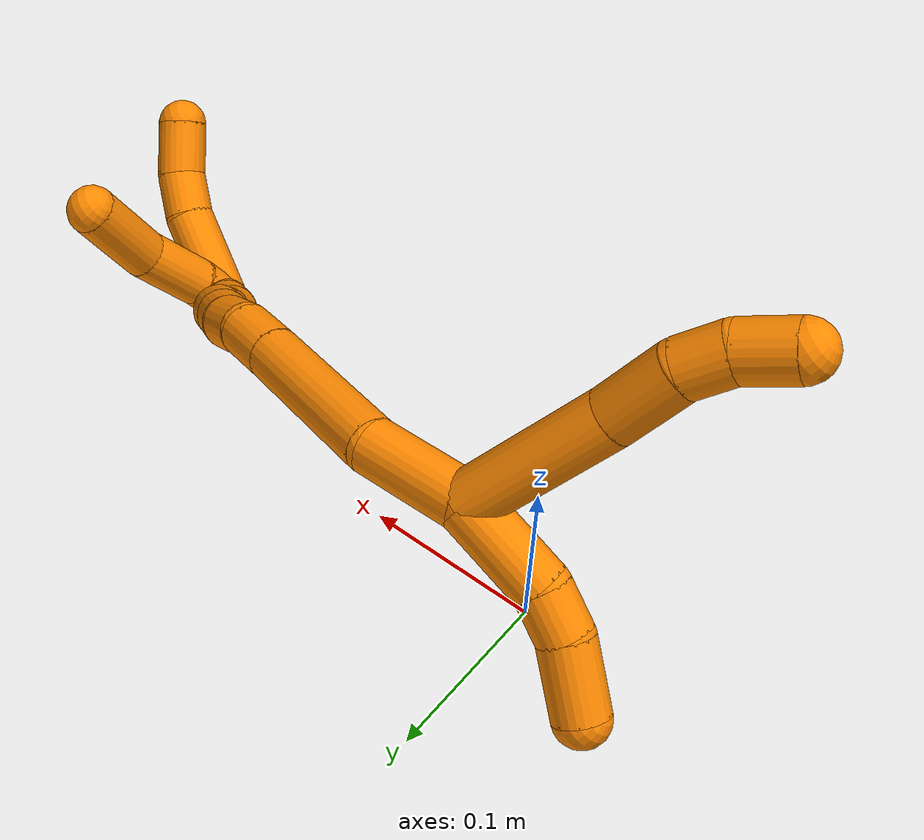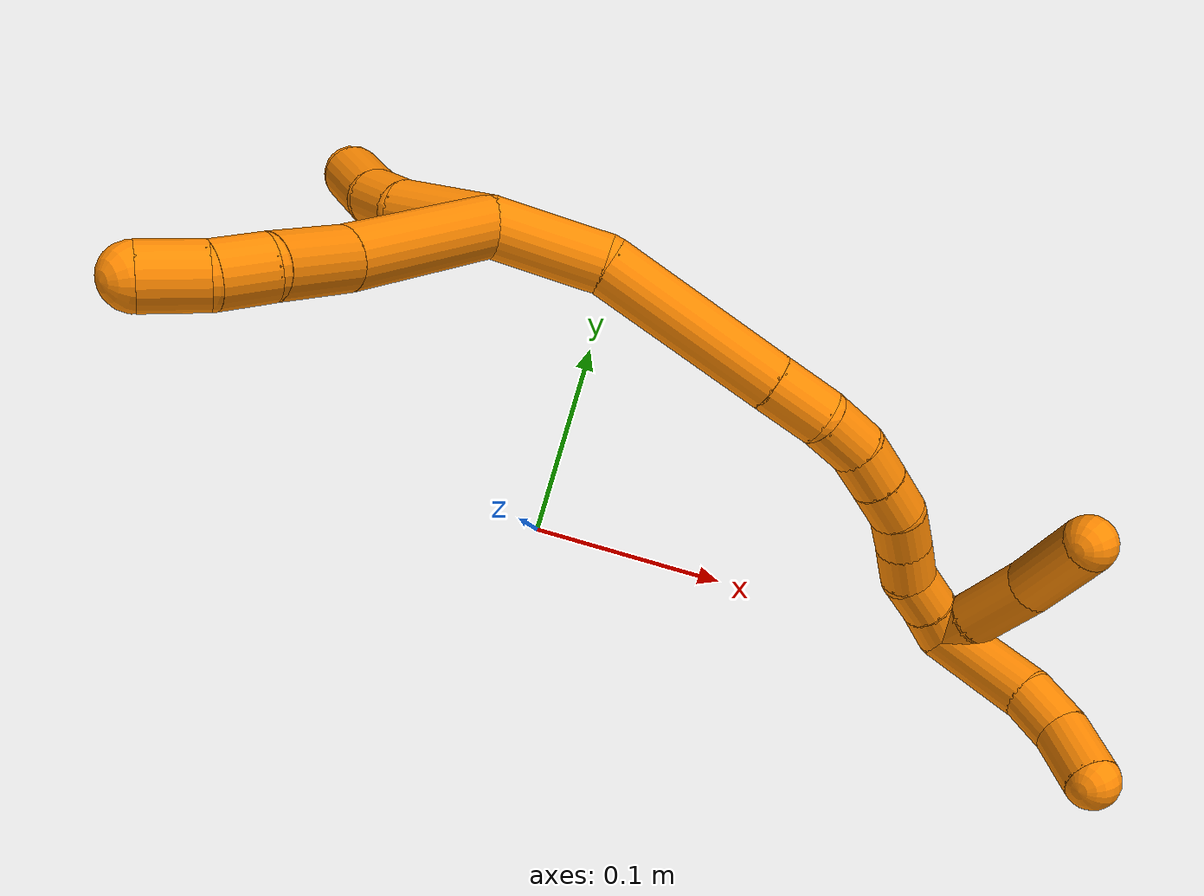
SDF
<sdf version="1.7">
 <world name="default">
  <model name="19">
   <static>0</static>
   <link name="19">
    <collision name="collision-cylinder-e_1_2_8">
     <pose>-0.000259 -0.001773 0.035304 0.050188 -0.007329 -0.000184</pose>
     <geometry><cylinder><radius>0.0125</radius><length>0.070699</length></cylinder></geometry>
     <surface>
      <friction><ode><mu>1.16</mu><mu2>1.16</mu2><slip1>0</slip1><slip2>0</slip2></ode></friction>
      <contact><ode><kp>1e+06</kp><kd>1</kd><max_vel>0</max_vel><min_depth>0.001</min_depth></ode></contact>
     </surface>
    </collision>
    <visual name="visual-cylinder-e_1_2_8">
     <pose>-0.000259 -0.001773 0.035304 0.050188 -0.007329 -0.000184</pose>
     <geometry><cylinder><radius>0.0125</radius><length>0.070699</length></cylinder></geometry>
     <material><ambient>0.996078 0.537255 0 1</ambient></material>
    </visual>
    <collision name="collision-cylinder-e_2_8_9">
     <pose>-0.000133 -0.002143 0.08747 -0.083033 0.022776 -0.000946</pose>
     <geometry><cylinder><radius>0.0125</radius><length>0.033848</length></cylinder></geometry>
     <surface>
      <friction><ode><mu>1.16</mu><mu2>1.16</mu2><slip1>0</slip1><slip2>0</slip2></ode></friction>
      <contact><ode><kp>1e+06</kp><kd>1</kd><max_vel>0</max_vel><min_depth>0.001</min_depth></ode></contact>
     </surface>
    </collision>
    <visual name="visual-cylinder-e_2_8_9">
     <pose>-0.000133 -0.002143 0.08747 -0.083033 0.022776 -0.000946</pose>
     <geometry><cylinder><radius>0.0125</radius><length>0.033848</length></cylinder></geometry>
     <material><ambient>0.996078 0.537255 0 1</ambient></material>
    </visual>
    <collision name="collision-cylinder-e_3_9_10">
     <pose>-0.001891 -0.002015 0.114652 0.122887 -0.203234 -0.012546</pose>
     <geometry><cylinder><radius>0.0125</radius><length>0.021237</length></cylinder></geometry>
     <surface>
      <friction><ode><mu>1.16</mu><mu2>1.16</mu2><slip1>0</slip1><slip2>0</slip2></ode></friction>
      <contact><ode><kp>1e+06</kp><kd>1</kd><max_vel>0</max_vel><min_depth>0.001</min_depth></ode></contact>
     </surface>
    </collision>
    <visual name="visual-cylinder-e_3_9_10">
     <pose>-0.001891 -0.002015 0.114652 0.122887 -0.203234 -0.012546</pose>
     <geometry><cylinder><radius>0.0125</radius><length>0.021237</length></cylinder></geometry>
     <material><ambient>0.996078 0.537255 0 1</ambient></material>
    </visual>
    <collision name="collision-cylinder-e_4_10_6">
     <pose>-0.009818 -0.005265 0.135426 0.186773 -0.498074 -0.047629</pose>
     <geometry><cylinder><radius>0.0125</radius><length>0.024216</length></cylinder></geometry>
     <surface>
      <friction><ode><mu>1.16</mu><mu2>1.16</mu2><slip1>0</slip1><slip2>0</slip2></ode></friction>
      <contact><ode><kp>1e+06</kp><kd>1</kd><max_vel>0</max_vel><min_depth>0.001</min_depth></ode></contact>
     </surface>
    </collision>
    <visual name="visual-cylinder-e_4_10_6">
     <pose>-0.009818 -0.005265 0.135426 0.186773 -0.498074 -0.047629</pose>
     <geometry><cylinder><radius>0.0125</radius><length>0.024216</length></cylinder></geometry>
     <material><ambient>0.996078 0.537255 0 1</ambient></material>
    </visual>
    <collision name="collision-cylinder-e_1_2_11">
     <pose>-0.020479 -0.008217 0.002944 1.22672 -1.1679 -0.870806</pose>
     <geometry><cylinder><radius>0.0125</radius><length>0.044523</length></cylinder></geometry>
     <surface>
      <friction><ode><mu>1.16</mu><mu2>1.16</mu2><slip1>0</slip1><slip2>0</slip2></ode></friction>
      <contact><ode><kp>1e+06</kp><kd>1</kd><max_vel>0</max_vel><min_depth>0.001</min_depth></ode></contact>
     </surface>
    </collision>
    <visual name="visual-cylinder-e_1_2_11">
     <pose>-0.020479 -0.008217 0.002944 1.22672 -1.1679 -0.870806</pose>
     <geometry><cylinder><radius>0.0125</radius><length>0.044523</length></cylinder></geometry>
     <material><ambient>0.996078 0.537255 0 1</ambient></material>
    </visual>
    <collision name="collision-cylinder-e_2_11_12">
     <pose>-0.051105 -0.020002 0.004067 2.04271 -1.19478 -1.67588</pose>
     <geometry><cylinder><radius>0.0125</radius><length>0.021819</length></cylinder></geometry>
     <surface>
      <friction><ode><mu>1.16</mu><mu2>1.16</mu2><slip1>0</slip1><slip2>0</slip2></ode></friction>
      <contact><ode><kp>1e+06</kp><kd>1</kd><max_vel>0</max_vel><min_depth>0.001</min_depth></ode></contact>
     </surface>
    </collision>
    <visual name="visual-cylinder-e_2_11_12">
     <pose>-0.051105 -0.020002 0.004067 2.04271 -1.19478 -1.67588</pose>
     <geometry><cylinder><radius>0.0125</radius><length>0.021819</length></cylinder></geometry>
     <material><ambient>0.996078 0.537255 0 1</ambient></material>
    </visual>
    <collision name="collision-cylinder-e_3_12_5">
     <pose>-0.076201 -0.027512 -0.004403 2.60643 -1.09355 -2.2952</pose>
     <geometry><cylinder><radius>0.0125</radius><length>0.033658</length></cylinder></geometry>
     <surface>
      <friction><ode><mu>1.16</mu><mu2>1.16</mu2><slip1>0</slip1><slip2>0</slip2></ode></friction>
      <contact><ode><kp>1e+06</kp><kd>1</kd><max_vel>0</max_vel><min_depth>0.001</min_depth></ode></contact>
     </surface>
    </collision>
    <visual name="visual-cylinder-e_3_12_5">
     <pose>-0.076201 -0.027512 -0.004403 2.60643 -1.09355 -2.2952</pose>
     <geometry><cylinder><radius>0.0125</radius><length>0.033658</length></cylinder></geometry>
     <material><ambient>0.996078 0.537255 0 1</ambient></material>
    </visual>
    <collision name="collision-cylinder-e_1_2_13">
     <pose>0.019827 0.001119 -0.013774 -3.06051 0.962079 -2.98647</pose>
     <geometry><cylinder><radius>0.0125</radius><length>0.048335</length></cylinder></geometry>
     <surface>
      <friction><ode><mu>1.16</mu><mu2>1.16</mu2><slip1>0</slip1><slip2>0</slip2></ode></friction>
      <contact><ode><kp>1e+06</kp><kd>1</kd><max_vel>0</max_vel><min_depth>0.001</min_depth></ode></contact>
     </surface>
    </collision>
    <visual name="visual-cylinder-e_1_2_13">
     <pose>0.019827 0.001119 -0.013774 -3.06051 0.962079 -2.98647</pose>
     <geometry><cylinder><radius>0.0125</radius><length>0.048335</length></cylinder></geometry>
     <material><ambient>0.996078 0.537255 0 1</ambient></material>
    </visual>
    <collision name="collision-cylinder-e_2_13_14">
     <pose>0.073085 -0.008347 -0.048393 2.6717 0.960541 2.28017</pose>
     <geometry><cylinder><radius>0.0125</radius><length>0.08159</length></cylinder></geometry>
     <surface>
      <friction><ode><mu>1.16</mu><mu2>1.16</mu2><slip1>0</slip1><slip2>0</slip2></ode></friction>
      <contact><ode><kp>1e+06</kp><kd>1</kd><max_vel>0</max_vel><min_depth>0.001</min_depth></ode></contact>
     </surface>
    </collision>
    <visual name="visual-cylinder-e_2_13_14">
     <pose>0.073085 -0.008347 -0.048393 2.6717 0.960541 2.28017</pose>
     <geometry><cylinder><radius>0.0125</radius><length>0.08159</length></cylinder></geometry>
     <material><ambient>0.996078 0.537255 0 1</ambient></material>
    </visual>
    <collision name="collision-cylinder-e_3_14_15">
     <pose>0.117023 -0.022332 -0.076134 2.68369 0.939063 2.28048</pose>
     <geometry><cylinder><radius>0.0125</radius><length>0.026038</length></cylinder></geometry>
     <surface>
      <friction><ode><mu>1.16</mu><mu2>1.16</mu2><slip1>0</slip1><slip2>0</slip2></ode></friction>
      <contact><ode><kp>1e+06</kp><kd>1</kd><max_vel>0</max_vel><min_depth>0.001</min_depth></ode></contact>
     </surface>
    </collision>
    <visual name="visual-cylinder-e_3_14_15">
     <pose>0.117023 -0.022332 -0.076134 2.68369 0.939063 2.28048</pose>
     <geometry><cylinder><radius>0.0125</radius><length>0.026038</length></cylinder></geometry>
     <material><ambient>0.996078 0.537255 0 1</ambient></material>
    </visual>
    <collision name="collision-cylinder-e_4_15_16">
     <pose>0.134168 -0.030911 -0.090478 2.53378 0.631715 1.61193</pose>
     <geometry><cylinder><radius>0.0125</radius><length>0.022484</length></cylinder></geometry>
     <surface>
      <friction><ode><mu>1.16</mu><mu2>1.16</mu2><slip1>0</slip1><slip2>0</slip2></ode></friction>
      <contact><ode><kp>1e+06</kp><kd>1</kd><max_vel>0</max_vel><min_depth>0.001</min_depth></ode></contact>
     </surface>
    </collision>
    <visual name="visual-cylinder-e_4_15_16">
     <pose>0.134168 -0.030911 -0.090478 2.53378 0.631715 1.61193</pose>
     <geometry><cylinder><radius>0.0125</radius><length>0.022484</length></cylinder></geometry>
     <material><ambient>0.996078 0.537255 0 1</ambient></material>
    </visual>
    <collision name="collision-cylinder-e_5_16_17">
     <pose>0.146201 -0.042622 -0.10341 2.26946 0.564068 1.11261</pose>
     <geometry><cylinder><radius>0.0125</radius><length>0.020182</length></cylinder></geometry>
     <surface>
      <friction><ode><mu>1.16</mu><mu2>1.16</mu2><slip1>0</slip1><slip2>0</slip2></ode></friction>
      <contact><ode><kp>1e+06</kp><kd>1</kd><max_vel>0</max_vel><min_depth>0.001</min_depth></ode></contact>
     </surface>
    </collision>
    <visual name="visual-cylinder-e_5_16_17">
     <pose>0.146201 -0.042622 -0.10341 2.26946 0.564068 1.11261</pose>
     <geometry><cylinder><radius>0.0125</radius><length>0.020182</length></cylinder></geometry>
     <material><ambient>0.996078 0.537255 0 1</ambient></material>
    </visual>
    <collision name="collision-cylinder-e_6_17_18">
     <pose>0.15671 -0.055949 -0.114654 2.27368 0.521085 1.04411</pose>
     <geometry><cylinder><radius>0.0125</radius><length>0.020543</length></cylinder></geometry>
     <surface>
      <friction><ode><mu>1.16</mu><mu2>1.16</mu2><slip1>0</slip1><slip2>0</slip2></ode></friction>
      <contact><ode><kp>1e+06</kp><kd>1</kd><max_vel>0</max_vel><min_depth>0.001</min_depth></ode></contact>
     </surface>
    </collision>
    <visual name="visual-cylinder-e_6_17_18">
     <pose>0.15671 -0.055949 -0.114654 2.27368 0.521085 1.04411</pose>
     <geometry><cylinder><radius>0.0125</radius><length>0.020543</length></cylinder></geometry>
     <material><ambient>0.996078 0.537255 0 1</ambient></material>
    </visual>
    <collision name="collision-cylinder-e_7_18_19">
     <pose>0.16472 -0.071155 -0.125126 2.08171 0.291904 0.491684</pose>
     <geometry><cylinder><radius>0.0125</radius><length>0.020133</length></cylinder></geometry>
     <surface>
      <friction><ode><mu>1.16</mu><mu2>1.16</mu2><slip1>0</slip1><slip2>0</slip2></ode></friction>
      <contact><ode><kp>1e+06</kp><kd>1</kd><max_vel>0</max_vel><min_depth>0.001</min_depth></ode></contact>
     </surface>
    </collision>
    <visual name="visual-cylinder-e_7_18_19">
     <pose>0.16472 -0.071155 -0.125126 2.08171 0.291904 0.491684</pose>
     <geometry><cylinder><radius>0.0125</radius><length>0.020133</length></cylinder></geometry>
     <material><ambient>0.996078 0.537255 0 1</ambient></material>
    </visual>
    <collision name="collision-cylinder-e_8_19_20">
     <pose>0.170932 -0.088232 -0.13381 2.00034 0.334678 0.514677</pose>
     <geometry><cylinder><radius>0.0125</radius><length>0.020187</length></cylinder></geometry>
     <surface>
      <friction><ode><mu>1.16</mu><mu2>1.16</mu2><slip1>0</slip1><slip2>0</slip2></ode></friction>
      <contact><ode><kp>1e+06</kp><kd>1</kd><max_vel>0</max_vel><min_depth>0.001</min_depth></ode></contact>
     </surface>
    </collision>
    <visual name="visual-cylinder-e_8_19_20">
     <pose>0.170932 -0.088232 -0.13381 2.00034 0.334678 0.514677</pose>
     <geometry><cylinder><radius>0.0125</radius><length>0.020187</length></cylinder></geometry>
     <material><ambient>0.996078 0.537255 0 1</ambient></material>
    </visual>
    <collision name="collision-cylinder-e_9_20_21">
     <pose>0.179694 -0.103281 -0.143299 2.28371 0.573183 1.14484</pose>
     <geometry><cylinder><radius>0.0125</radius><length>0.020084</length></cylinder></geometry>
     <surface>
      <friction><ode><mu>1.16</mu><mu2>1.16</mu2><slip1>0</slip1><slip2>0</slip2></ode></friction>
      <contact><ode><kp>1e+06</kp><kd>1</kd><max_vel>0</max_vel><min_depth>0.001</min_depth></ode></contact>
     </surface>
    </collision>
    <visual name="visual-cylinder-e_9_20_21">
     <pose>0.179694 -0.103281 -0.143299 2.28371 0.573183 1.14484</pose>
     <geometry><cylinder><radius>0.0125</radius><length>0.020084</length></cylinder></geometry>
     <material><ambient>0.996078 0.537255 0 1</ambient></material>
    </visual>
    <collision name="collision-cylinder-e_10_21_1">
     <pose>0.189898 -0.116787 -0.154377 2.23356 0.484676 0.937714</pose>
     <geometry><cylinder><radius>0.0125</radius><length>0.020424</length></cylinder></geometry>
     <surface>
      <friction><ode><mu>1.16</mu><mu2>1.16</mu2><slip1>0</slip1><slip2>0</slip2></ode></friction>
      <contact><ode><kp>1e+06</kp><kd>1</kd><max_vel>0</max_vel><min_depth>0.001</min_depth></ode></contact>
     </surface>
    </collision>
    <visual name="visual-cylinder-e_10_21_1">
     <pose>0.189898 -0.116787 -0.154377 2.23356 0.484676 0.937714</pose>
     <geometry><cylinder><radius>0.0125</radius><length>0.020424</length></cylinder></geometry>
     <material><ambient>0.996078 0.537255 0 1</ambient></material>
    </visual>
    <collision name="collision-cylinder-e_1_1_22">
     <pose>0.21889 -0.120267 -0.157264 -0.937833 1.3865 -0.796776</pose>
     <geometry><cylinder><radius>0.0125</radius><length>0.049303</length></cylinder></geometry>
     <surface>
      <friction><ode><mu>1.16</mu><mu2>1.16</mu2><slip1>0</slip1><slip2>0</slip2></ode></friction>
      <contact><ode><kp>1e+06</kp><kd>1</kd><max_vel>0</max_vel><min_depth>0.001</min_depth></ode></contact>
     </surface>
    </collision>
    <visual name="visual-cylinder-e_1_1_22">
     <pose>0.21889 -0.120267 -0.157264 -0.937833 1.3865 -0.796776</pose>
     <geometry><cylinder><radius>0.0125</radius><length>0.049303</length></cylinder></geometry>
     <material><ambient>0.996078 0.537255 0 1</ambient></material>
    </visual>
    <collision name="collision-cylinder-e_2_22_23">
     <pose>0.254195 -0.116462 -0.151569 -0.053826 1.30383 -0.041086</pose>
     <geometry><cylinder><radius>0.0125</radius><length>0.022956</length></cylinder></geometry>
     <surface>
      <friction><ode><mu>1.16</mu><mu2>1.16</mu2><slip1>0</slip1><slip2>0</slip2></ode></friction>
      <contact><ode><kp>1e+06</kp><kd>1</kd><max_vel>0</max_vel><min_depth>0.001</min_depth></ode></contact>
     </surface>
    </collision>
    <visual name="visual-cylinder-e_2_22_23">
     <pose>0.254195 -0.116462 -0.151569 -0.053826 1.30383 -0.041086</pose>
     <geometry><cylinder><radius>0.0125</radius><length>0.022956</length></cylinder></geometry>
     <material><ambient>0.996078 0.537255 0 1</ambient></material>
    </visual>
    <collision name="collision-cylinder-e_3_23_4">
     <pose>0.27718 -0.116077 -0.141444 -0.031213 1.03304 -0.017728</pose>
     <geometry><cylinder><radius>0.0125</radius><length>0.027741</length></cylinder></geometry>
     <surface>
      <friction><ode><mu>1.16</mu><mu2>1.16</mu2><slip1>0</slip1><slip2>0</slip2></ode></friction>
      <contact><ode><kp>1e+06</kp><kd>1</kd><max_vel>0</max_vel><min_depth>0.001</min_depth></ode></contact>
     </surface>
    </collision>
    <visual name="visual-cylinder-e_3_23_4">
     <pose>0.27718 -0.116077 -0.141444 -0.031213 1.03304 -0.017728</pose>
     <geometry><cylinder><radius>0.0125</radius><length>0.027741</length></cylinder></geometry>
     <material><ambient>0.996078 0.537255 0 1</ambient></material>
    </visual>
    <collision name="collision-cylinder-e_1_1_24">
     <pose>0.199113 -0.114924 -0.158987 -1.46547 0.458252 -0.413729</pose>
     <geometry><cylinder><radius>0.0125</radius><length>0.020151</length></cylinder></geometry>
     <surface>
      <friction><ode><mu>1.16</mu><mu2>1.16</mu2><slip1>0</slip1><slip2>0</slip2></ode></friction>
      <contact><ode><kp>1e+06</kp><kd>1</kd><max_vel>0</max_vel><min_depth>0.001</min_depth></ode></contact>
     </surface>
    </collision>
    <visual name="visual-cylinder-e_1_1_24">
     <pose>0.199113 -0.114924 -0.158987 -1.46547 0.458252 -0.413729</pose>
     <geometry><cylinder><radius>0.0125</radius><length>0.020151</length></cylinder></geometry>
     <material><ambient>0.996078 0.537255 0 1</ambient></material>
    </visual>
    <collision name="collision-cylinder-e_2_24_25">
     <pose>0.210756 -0.089591 -0.157954 -1.56575 0.414173 -0.412147</pose>
     <geometry><cylinder><radius>0.0125</radius><length>0.035715</length></cylinder></geometry>
     <surface>
      <friction><ode><mu>1.16</mu><mu2>1.16</mu2><slip1>0</slip1><slip2>0</slip2></ode></friction>
      <contact><ode><kp>1e+06</kp><kd>1</kd><max_vel>0</max_vel><min_depth>0.001</min_depth></ode></contact>
     </surface>
    </collision>
    <visual name="visual-cylinder-e_2_24_25">
     <pose>0.210756 -0.089591 -0.157954 -1.56575 0.414173 -0.412147</pose>
     <geometry><cylinder><radius>0.0125</radius><length>0.035715</length></cylinder></geometry>
     <material><ambient>0.996078 0.537255 0 1</ambient></material>
    </visual>
    <collision name="collision-cylinder-e_3_25_3">
     <pose>0.225054 -0.053198 -0.151992 -1.28547 0.32812 -0.246668</pose>
     <geometry><cylinder><radius>0.0125</radius><length>0.044134</length></cylinder></geometry>
     <surface>
      <friction><ode><mu>1.16</mu><mu2>1.16</mu2><slip1>0</slip1><slip2>0</slip2></ode></friction>
      <contact><ode><kp>1e+06</kp><kd>1</kd><max_vel>0</max_vel><min_depth>0.001</min_depth></ode></contact>
     </surface>
    </collision>
    <visual name="visual-cylinder-e_3_25_3">
     <pose>0.225054 -0.053198 -0.151992 -1.28547 0.32812 -0.246668</pose>
     <geometry><cylinder><radius>0.0125</radius><length>0.044134</length></cylinder></geometry>
     <material><ambient>0.996078 0.537255 0 1</ambient></material>
    </visual>
    <collision name="collision-sphere-3">
     <pose>0.232166 -0.033153 -0.146112 0 -0 0</pose>
     <geometry><sphere><radius>0.0125</radius></sphere></geometry>
     <surface>
      <friction><ode><mu>1.16</mu><mu2>1.16</mu2><slip1>0</slip1><slip2>0</slip2></ode></friction>
      <contact><ode><kp>1e+06</kp><kd>1</kd><max_vel>0</max_vel><min_depth>0.001</min_depth></ode></contact>
     </surface>
    </collision>
    <visual name="visual-sphere-3">
     <pose>0.232166 -0.033153 -0.146112 0 -0 0</pose>
     <geometry><sphere><radius>0.0125</radius></sphere></geometry>
     <material><ambient>0.996078 0.537255 0 1</ambient></material>
    </visual>
    <collision name="collision-sphere-25">
     <pose>0.217943 -0.073243 -0.157872 0 -0 0</pose>
     <geometry><sphere><radius>0.0125</radius></sphere></geometry>
     <surface>
      <friction><ode><mu>1.16</mu><mu2>1.16</mu2><slip1>0</slip1><slip2>0</slip2></ode></friction>
      <contact><ode><kp>1e+06</kp><kd>1</kd><max_vel>0</max_vel><min_depth>0.001</min_depth></ode></contact>
     </surface>
    </collision>
    <visual name="visual-sphere-25">
     <pose>0.217943 -0.073243 -0.157872 0 -0 0</pose>
     <geometry><sphere><radius>0.0125</radius></sphere></geometry>
     <material><ambient>0.996078 0.537255 0 1</ambient></material>
    </visual>
    <collision name="collision-sphere-24">
     <pose>0.20357 -0.105938 -0.158037 0 -0 0</pose>
     <geometry><sphere><radius>0.0125</radius></sphere></geometry>
     <surface>
      <friction><ode><mu>1.16</mu><mu2>1.16</mu2><slip1>0</slip1><slip2>0</slip2></ode></friction>
      <contact><ode><kp>1e+06</kp><kd>1</kd><max_vel>0</max_vel><min_depth>0.001</min_depth></ode></contact>
     </surface>
    </collision>
    <visual name="visual-sphere-24">
     <pose>0.20357 -0.105938 -0.158037 0 -0 0</pose>
     <geometry><sphere><radius>0.0125</radius></sphere></geometry>
     <material><ambient>0.996078 0.537255 0 1</ambient></material>
    </visual>
    <collision name="collision-sphere-4">
     <pose>0.289092 -0.115856 -0.134343 0 -0 0</pose>
     <geometry><sphere><radius>0.0125</radius></sphere></geometry>
     <surface>
      <friction><ode><mu>1.16</mu><mu2>1.16</mu2><slip1>0</slip1><slip2>0</slip2></ode></friction>
      <contact><ode><kp>1e+06</kp><kd>1</kd><max_vel>0</max_vel><min_depth>0.001</min_depth></ode></contact>
     </surface>
    </collision>
    <visual name="visual-sphere-4">
     <pose>0.289092 -0.115856 -0.134343 0 -0 0</pose>
     <geometry><sphere><radius>0.0125</radius></sphere></geometry>
     <material><ambient>0.996078 0.537255 0 1</ambient></material>
    </visual>
    <collision name="collision-sphere-23">
     <pose>0.265267 -0.116299 -0.148545 0 -0 0</pose>
     <geometry><sphere><radius>0.0125</radius></sphere></geometry>
     <surface>
      <friction><ode><mu>1.16</mu><mu2>1.16</mu2><slip1>0</slip1><slip2>0</slip2></ode></friction>
      <contact><ode><kp>1e+06</kp><kd>1</kd><max_vel>0</max_vel><min_depth>0.001</min_depth></ode></contact>
     </surface>
    </collision>
    <visual name="visual-sphere-23">
     <pose>0.265267 -0.116299 -0.148545 0 -0 0</pose>
     <geometry><sphere><radius>0.0125</radius></sphere></geometry>
     <material><ambient>0.996078 0.537255 0 1</ambient></material>
    </visual>
    <collision name="collision-sphere-22">
     <pose>0.243124 -0.116625 -0.154592 0 -0 0</pose>
     <geometry><sphere><radius>0.0125</radius></sphere></geometry>
     <surface>
      <friction><ode><mu>1.16</mu><mu2>1.16</mu2><slip1>0</slip1><slip2>0</slip2></ode></friction>
      <contact><ode><kp>1e+06</kp><kd>1</kd><max_vel>0</max_vel><min_depth>0.001</min_depth></ode></contact>
     </surface>
    </collision>
    <visual name="visual-sphere-22">
     <pose>0.243124 -0.116625 -0.154592 0 -0 0</pose>
     <geometry><sphere><radius>0.0125</radius></sphere></geometry>
     <material><ambient>0.996078 0.537255 0 1</ambient></material>
    </visual>
    <collision name="collision-sphere-1">
     <pose>0.194656 -0.12391 -0.159937 0 -0 0</pose>
     <geometry><sphere><radius>0.0125</radius></sphere></geometry>
     <surface>
      <friction><ode><mu>1.16</mu><mu2>1.16</mu2><slip1>0</slip1><slip2>0</slip2></ode></friction>
      <contact><ode><kp>1e+06</kp><kd>1</kd><max_vel>0</max_vel><min_depth>0.001</min_depth></ode></contact>
     </surface>
    </collision>
    <visual name="visual-sphere-1">
     <pose>0.194656 -0.12391 -0.159937 0 -0 0</pose>
     <geometry><sphere><radius>0.0125</radius></sphere></geometry>
     <material><ambient>0.996078 0.537255 0 1</ambient></material>
    </visual>
    <collision name="collision-sphere-21">
     <pose>0.185139 -0.109664 -0.148817 0 -0 0</pose>
     <geometry><sphere><radius>0.0125</radius></sphere></geometry>
     <surface>
      <friction><ode><mu>1.16</mu><mu2>1.16</mu2><slip1>0</slip1><slip2>0</slip2></ode></friction>
      <contact><ode><kp>1e+06</kp><kd>1</kd><max_vel>0</max_vel><min_depth>0.001</min_depth></ode></contact>
     </surface>
    </collision>
    <visual name="visual-sphere-21">
     <pose>0.185139 -0.109664 -0.148817 0 -0 0</pose>
     <geometry><sphere><radius>0.0125</radius></sphere></geometry>
     <material><ambient>0.996078 0.537255 0 1</ambient></material>
    </visual>
    <collision name="collision-sphere-11">
     <pose>-0.040958 -0.016433 0.005889 0 -0 0</pose>
     <geometry><sphere><radius>0.0125</radius></sphere></geometry>
     <surface>
      <friction><ode><mu>1.16</mu><mu2>1.16</mu2><slip1>0</slip1><slip2>0</slip2></ode></friction>
      <contact><ode><kp>1e+06</kp><kd>1</kd><max_vel>0</max_vel><min_depth>0.001</min_depth></ode></contact>
     </surface>
    </collision>
    <visual name="visual-sphere-11">
     <pose>-0.040958 -0.016433 0.005889 0 -0 0</pose>
     <geometry><sphere><radius>0.0125</radius></sphere></geometry>
     <material><ambient>0.996078 0.537255 0 1</ambient></material>
    </visual>
    <collision name="collision-sphere-6">
     <pose>-0.015603 -0.00724 0.145878 0 -0 0</pose>
     <geometry><sphere><radius>0.0125</radius></sphere></geometry>
     <surface>
      <friction><ode><mu>1.16</mu><mu2>1.16</mu2><slip1>0</slip1><slip2>0</slip2></ode></friction>
      <contact><ode><kp>1e+06</kp><kd>1</kd><max_vel>0</max_vel><min_depth>0.001</min_depth></ode></contact>
     </surface>
    </collision>
    <visual name="visual-sphere-6">
     <pose>-0.015603 -0.00724 0.145878 0 -0 0</pose>
     <geometry><sphere><radius>0.0125</radius></sphere></geometry>
     <material><ambient>0.996078 0.537255 0 1</ambient></material>
    </visual>
    <collision name="collision-sphere-10">
     <pose>-0.004034 -0.00329 0.124974 0 -0 0</pose>
     <geometry><sphere><radius>0.0125</radius></sphere></geometry>
     <surface>
      <friction><ode><mu>1.16</mu><mu2>1.16</mu2><slip1>0</slip1><slip2>0</slip2></ode></friction>
      <contact><ode><kp>1e+06</kp><kd>1</kd><max_vel>0</max_vel><min_depth>0.001</min_depth></ode></contact>
     </surface>
    </collision>
    <visual name="visual-sphere-10">
     <pose>-0.004034 -0.00329 0.124974 0 -0 0</pose>
     <geometry><sphere><radius>0.0125</radius></sphere></geometry>
     <material><ambient>0.996078 0.537255 0 1</ambient></material>
    </visual>
    <collision name="collision-sphere-9">
     <pose>0.000253 -0.00074 0.104331 0 -0 0</pose>
     <geometry><sphere><radius>0.0125</radius></sphere></geometry>
     <surface>
      <friction><ode><mu>1.16</mu><mu2>1.16</mu2><slip1>0</slip1><slip2>0</slip2></ode></friction>
      <contact><ode><kp>1e+06</kp><kd>1</kd><max_vel>0</max_vel><min_depth>0.001</min_depth></ode></contact>
     </surface>
    </collision>
    <visual name="visual-sphere-9">
     <pose>0.000253 -0.00074 0.104331 0 -0 0</pose>
     <geometry><sphere><radius>0.0125</radius></sphere></geometry>
     <material><ambient>0.996078 0.537255 0 1</ambient></material>
    </visual>
    <collision name="collision-sphere-2">
     <geometry><sphere><radius>0.0125</radius></sphere></geometry>
     <surface>
      <friction><ode><mu>1.16</mu><mu2>1.16</mu2><slip1>0</slip1><slip2>0</slip2></ode></friction>
      <contact><ode><kp>1e+06</kp><kd>1</kd><max_vel>0</max_vel><min_depth>0.001</min_depth></ode></contact>
     </surface>
    </collision>
    <visual name="visual-sphere-2">
     <geometry><sphere><radius>0.0125</radius></sphere></geometry>
     <material><ambient>0.996078 0.537255 0 1</ambient></material>
    </visual>
    <collision name="collision-sphere-19">
     <pose>0.167617 -0.079564 -0.12984 0 -0 0</pose>
     <geometry><sphere><radius>0.0125</radius></sphere></geometry>
     <surface>
      <friction><ode><mu>1.16</mu><mu2>1.16</mu2><slip1>0</slip1><slip2>0</slip2></ode></friction>
      <contact><ode><kp>1e+06</kp><kd>1</kd><max_vel>0</max_vel><min_depth>0.001</min_depth></ode></contact>
     </surface>
    </collision>
    <visual name="visual-sphere-19">
     <pose>0.167617 -0.079564 -0.12984 0 -0 0</pose>
     <geometry><sphere><radius>0.0125</radius></sphere></geometry>
     <material><ambient>0.996078 0.537255 0 1</ambient></material>
    </visual>
    <collision name="collision-sphere-8">
     <pose>-0.000518 -0.003547 0.070608 0 -0 0</pose>
     <geometry><sphere><radius>0.0125</radius></sphere></geometry>
     <surface>
      <friction><ode><mu>1.16</mu><mu2>1.16</mu2><slip1>0</slip1><slip2>0</slip2></ode></friction>
      <contact><ode><kp>1e+06</kp><kd>1</kd><max_vel>0</max_vel><min_depth>0.001</min_depth></ode></contact>
     </surface>
    </collision>
    <visual name="visual-sphere-8">
     <pose>-0.000518 -0.003547 0.070608 0 -0 0</pose>
     <geometry><sphere><radius>0.0125</radius></sphere></geometry>
     <material><ambient>0.996078 0.537255 0 1</ambient></material>
    </visual>
    <collision name="collision-sphere-12">
     <pose>-0.061252 -0.02357 0.002246 0 -0 0</pose>
     <geometry><sphere><radius>0.0125</radius></sphere></geometry>
     <surface>
      <friction><ode><mu>1.16</mu><mu2>1.16</mu2><slip1>0</slip1><slip2>0</slip2></ode></friction>
      <contact><ode><kp>1e+06</kp><kd>1</kd><max_vel>0</max_vel><min_depth>0.001</min_depth></ode></contact>
     </surface>
    </collision>
    <visual name="visual-sphere-12">
     <pose>-0.061252 -0.02357 0.002246 0 -0 0</pose>
     <geometry><sphere><radius>0.0125</radius></sphere></geometry>
     <material><ambient>0.996078 0.537255 0 1</ambient></material>
    </visual>
    <collision name="collision-sphere-5">
     <pose>-0.09115 -0.031455 -0.011053 0 -0 0</pose>
     <geometry><sphere><radius>0.0125</radius></sphere></geometry>
     <surface>
      <friction><ode><mu>1.16</mu><mu2>1.16</mu2><slip1>0</slip1><slip2>0</slip2></ode></friction>
      <contact><ode><kp>1e+06</kp><kd>1</kd><max_vel>0</max_vel><min_depth>0.001</min_depth></ode></contact>
     </surface>
    </collision>
    <visual name="visual-sphere-5">
     <pose>-0.09115 -0.031455 -0.011053 0 -0 0</pose>
     <geometry><sphere><radius>0.0125</radius></sphere></geometry>
     <material><ambient>0.996078 0.537255 0 1</ambient></material>
    </visual>
    <collision name="collision-sphere-13">
     <pose>0.039653 0.002238 -0.027548 0 -0 0</pose>
     <geometry><sphere><radius>0.0125</radius></sphere></geometry>
     <surface>
      <friction><ode><mu>1.16</mu><mu2>1.16</mu2><slip1>0</slip1><slip2>0</slip2></ode></friction>
      <contact><ode><kp>1e+06</kp><kd>1</kd><max_vel>0</max_vel><min_depth>0.001</min_depth></ode></contact>
     </surface>
    </collision>
    <visual name="visual-sphere-13">
     <pose>0.039653 0.002238 -0.027548 0 -0 0</pose>
     <geometry><sphere><radius>0.0125</radius></sphere></geometry>
     <material><ambient>0.996078 0.537255 0 1</ambient></material>
    </visual>
    <collision name="collision-sphere-14">
     <pose>0.106517 -0.018933 -0.069238 0 -0 0</pose>
     <geometry><sphere><radius>0.0125</radius></sphere></geometry>
     <surface>
      <friction><ode><mu>1.16</mu><mu2>1.16</mu2><slip1>0</slip1><slip2>0</slip2></ode></friction>
      <contact><ode><kp>1e+06</kp><kd>1</kd><max_vel>0</max_vel><min_depth>0.001</min_depth></ode></contact>
     </surface>
    </collision>
    <visual name="visual-sphere-14">
     <pose>0.106517 -0.018933 -0.069238 0 -0 0</pose>
     <geometry><sphere><radius>0.0125</radius></sphere></geometry>
     <material><ambient>0.996078 0.537255 0 1</ambient></material>
    </visual>
    <collision name="collision-sphere-15">
     <pose>0.127529 -0.02573 -0.08303 0 -0 0</pose>
     <geometry><sphere><radius>0.0125</radius></sphere></geometry>
     <surface>
      <friction><ode><mu>1.16</mu><mu2>1.16</mu2><slip1>0</slip1><slip2>0</slip2></ode></friction>
      <contact><ode><kp>1e+06</kp><kd>1</kd><max_vel>0</max_vel><min_depth>0.001</min_depth></ode></contact>
     </surface>
    </collision>
    <visual name="visual-sphere-15">
     <pose>0.127529 -0.02573 -0.08303 0 -0 0</pose>
     <geometry><sphere><radius>0.0125</radius></sphere></geometry>
     <material><ambient>0.996078 0.537255 0 1</ambient></material>
    </visual>
    <collision name="collision-sphere-16">
     <pose>0.140807 -0.036092 -0.097925 0 -0 0</pose>
     <geometry><sphere><radius>0.0125</radius></sphere></geometry>
     <surface>
      <friction><ode><mu>1.16</mu><mu2>1.16</mu2><slip1>0</slip1><slip2>0</slip2></ode></friction>
      <contact><ode><kp>1e+06</kp><kd>1</kd><max_vel>0</max_vel><min_depth>0.001</min_depth></ode></contact>
     </surface>
    </collision>
    <visual name="visual-sphere-16">
     <pose>0.140807 -0.036092 -0.097925 0 -0 0</pose>
     <geometry><sphere><radius>0.0125</radius></sphere></geometry>
     <material><ambient>0.996078 0.537255 0 1</ambient></material>
    </visual>
    <collision name="collision-sphere-17">
     <pose>0.151596 -0.049152 -0.108895 0 -0 0</pose>
     <geometry><sphere><radius>0.0125</radius></sphere></geometry>
     <surface>
      <friction><ode><mu>1.16</mu><mu2>1.16</mu2><slip1>0</slip1><slip2>0</slip2></ode></friction>
      <contact><ode><kp>1e+06</kp><kd>1</kd><max_vel>0</max_vel><min_depth>0.001</min_depth></ode></contact>
     </surface>
    </collision>
    <visual name="visual-sphere-17">
     <pose>0.151596 -0.049152 -0.108895 0 -0 0</pose>
     <geometry><sphere><radius>0.0125</radius></sphere></geometry>
     <material><ambient>0.996078 0.537255 0 1</ambient></material>
    </visual>
    <collision name="collision-sphere-18">
     <pose>0.161823 -0.062746 -0.120412 0 -0 0</pose>
     <geometry><sphere><radius>0.0125</radius></sphere></geometry>
     <surface>
      <friction><ode><mu>1.16</mu><mu2>1.16</mu2><slip1>0</slip1><slip2>0</slip2></ode></friction>
      <contact><ode><kp>1e+06</kp><kd>1</kd><max_vel>0</max_vel><min_depth>0.001</min_depth></ode></contact>
     </surface>
    </collision>
    <visual name="visual-sphere-18">
     <pose>0.161823 -0.062746 -0.120412 0 -0 0</pose>
     <geometry><sphere><radius>0.0125</radius></sphere></geometry>
     <material><ambient>0.996078 0.537255 0 1</ambient></material>
    </visual>
    <collision name="collision-sphere-20">
     <pose>0.174248 -0.096899 -0.13778 0 -0 0</pose>
     <geometry><sphere><radius>0.0125</radius></sphere></geometry>
     <surface>
      <friction><ode><mu>1.16</mu><mu2>1.16</mu2><slip1>0</slip1><slip2>0</slip2></ode></friction>
      <contact><ode><kp>1e+06</kp><kd>1</kd><max_vel>0</max_vel><min_depth>0.001</min_depth></ode></contact>
     </surface>
    </collision>
    <visual name="visual-sphere-20">
     <pose>0.174248 -0.096899 -0.13778 0 -0 0</pose>
     <geometry><sphere><radius>0.0125</radius></sphere></geometry>
     <material><ambient>0.996078 0.537255 0 1</ambient></material>
    </visual>
    <inertial>
     <pose>0.099074 -0.044492 -0.058389 0 -0 0</pose>
     <mass>0.75</mass>
     <inertia><ixx>7.2e-05</ixx><ixy>0</ixy><ixz>0</ixz><iyy>0.000142</iyy><iyz>0</iyz><izz>-5e-05</izz></inertia>
    </inertial>
   </link>
   <pose>-0.030056 0.104119 0.22411 0.71594 -0.368661 -0.451973</pose>
  </model>
 </world>
</sdf>
